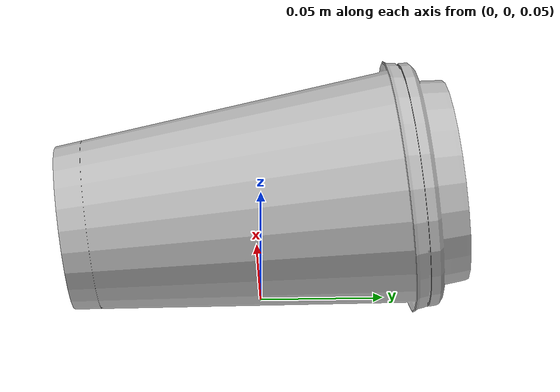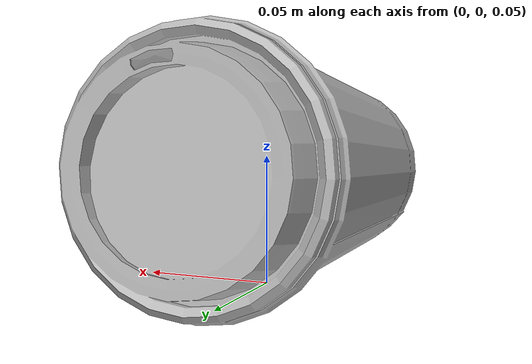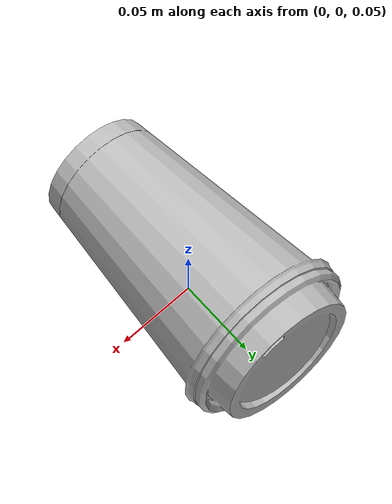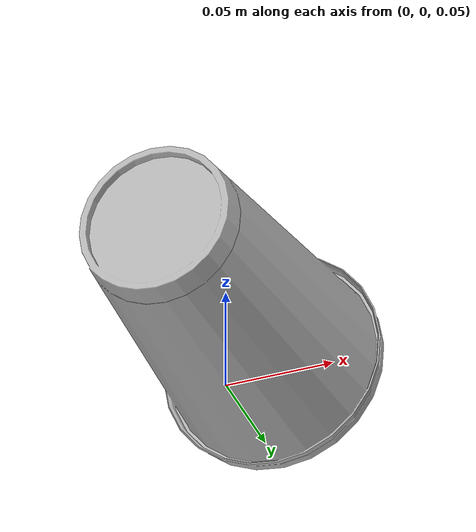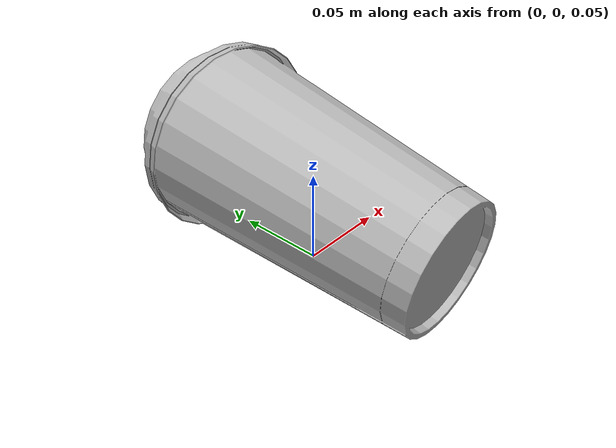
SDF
<?xml version="1.0"?>
<sdf version="1.6">
  <model name="trash_coffee_cup_01">
    <static>true</static>
    <pose>0 0 0.0533 0 0 0</pose>
    <link name="link">
      <visual name="visual">
        <cast_shadows>false</cast_shadows>
        <geometry>
          <mesh>
            <uri>model://trash_coffee_cup_01/meshes/trash_coffee_cup_01.dae</uri>
            <scale>1.0000 1.0000 1.0000</scale>
          </mesh>
        </geometry>
      </visual>
    </link>
  </model>
</sdf>
